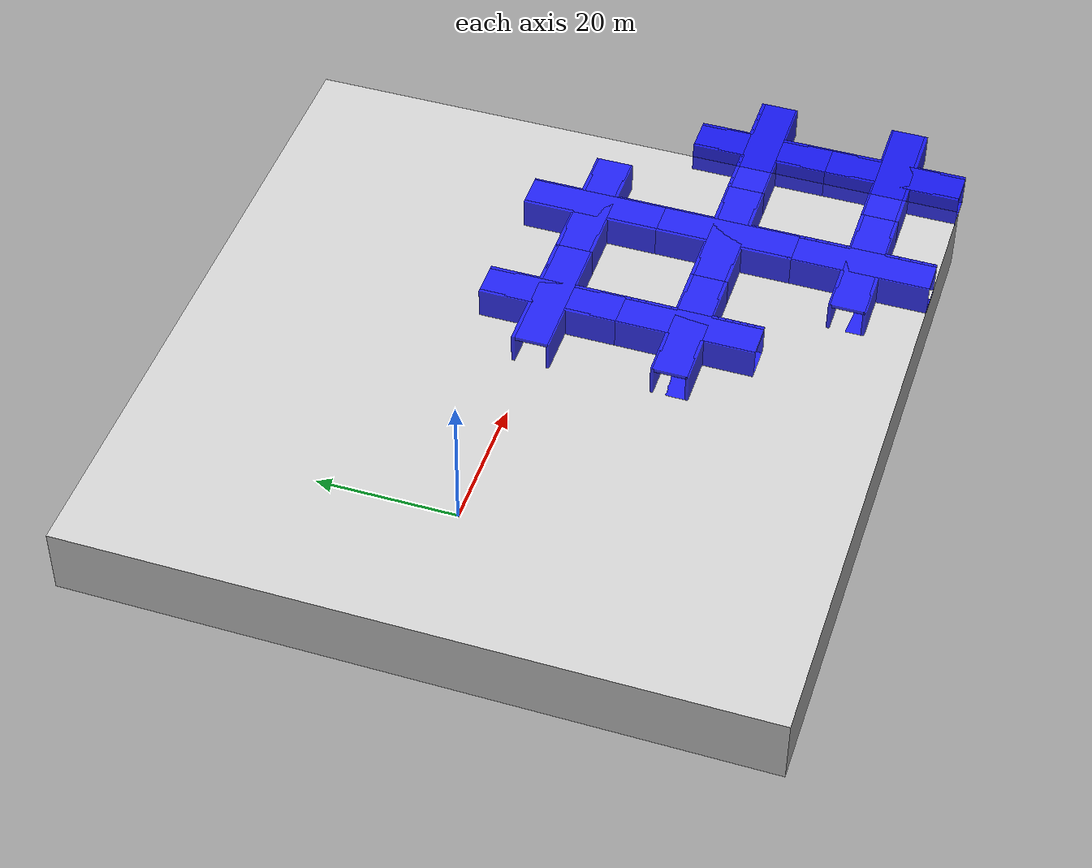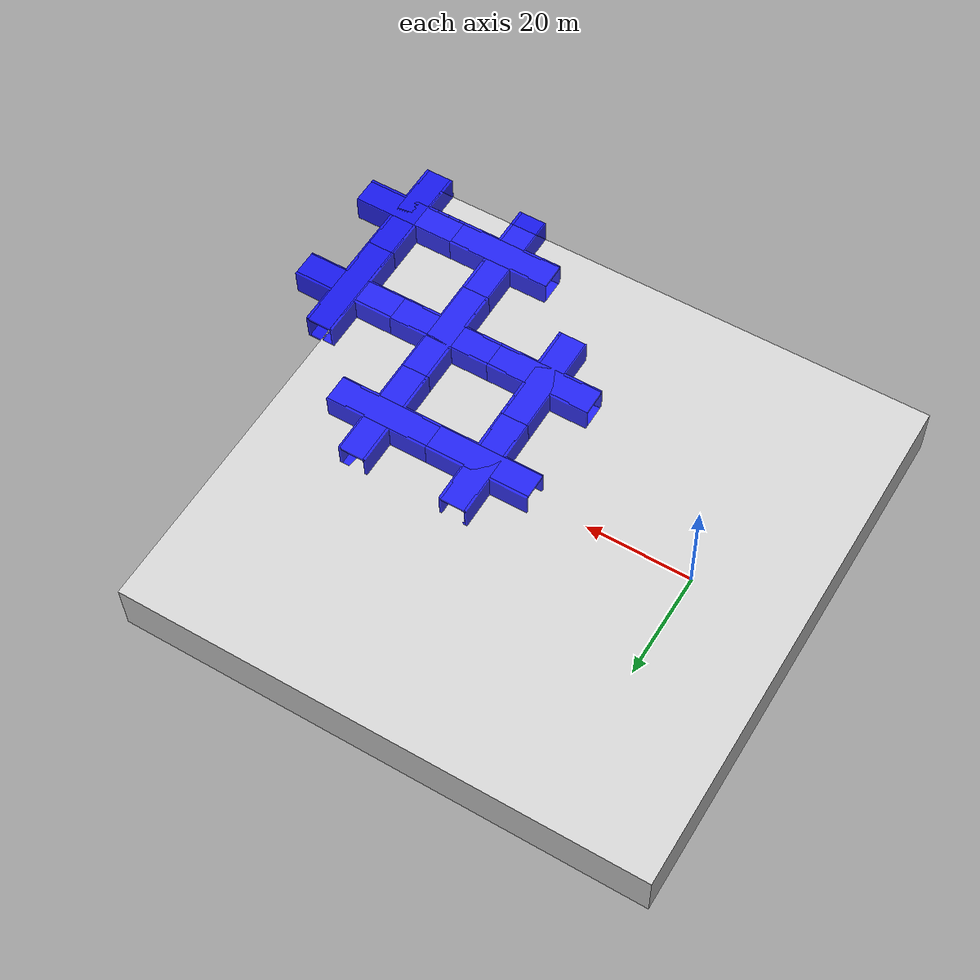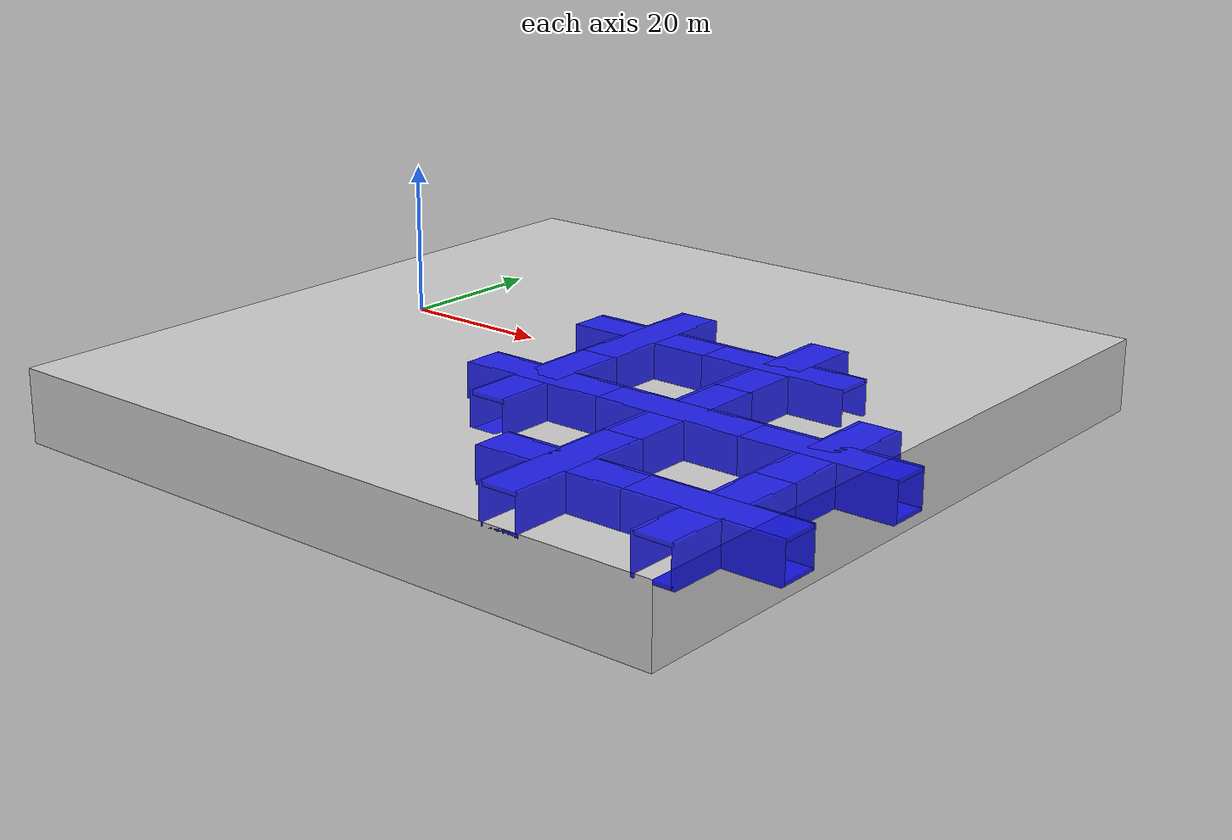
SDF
<sdf version="1.6">
 <world name="default">
  <model name="ground_plane">
   <static>true</static>
   <pose>30 0 0 0 0 0</pose>
   <link name="link">
    <collision name="collision">
     <pose>0 0 -5 0 0 0</pose>
     <geometry><box><size>100 100 10</size></box></geometry>
    </collision>
    <visual name="visual">
     <pose>0 0 -5 0 0 0</pose>
     <geometry><box><size>100 100 10</size></box></geometry>
     <material>
      <ambient>0.8 0.8 0.8 1</ambient>
      <diffuse>0.8 0.8 0.8 1</diffuse>
      <specular>0.8 0.8 0.8 1</specular>
      <emissive>0.8 0.8 0.8 1</emissive>
     </material>
    </visual>
   </link>
  </model>
  <model name="tunnel_tile_1_tile_6">
   <pose>40 -20 0 0 0 0</pose>
   <static>true</static>
   <link name="link">
    <collision name="collision_0">
     <pose>0 0 -0.25 0 0 0</pose>
     <geometry><box><size>5 20 0.5</size></box></geometry>
    </collision>
    <visual name="visual_0">
     <pose>0 0 -0.25 0 0 0</pose>
     <geometry><box><size>5 20 0.5</size></box></geometry>
     <material><ambient>0 0 1 0.8</ambient><diffuse>0 0 1 0.8</diffuse><specular>1 1 1 0.8</specular></material>
    </visual>
    <collision name="collision_1">
     <pose>0 0 4.25 0 0 0</pose>
     <geometry><box><size>5 20 0.5</size></box></geometry>
    </collision>
    <visual name="visual_1">
     <pose>0 0 4.25 0 0 0</pose>
     <geometry><box><size>5 20 0.5</size></box></geometry>
     <material><ambient>0 0 1 0.8</ambient><diffuse>0 0 1 0.8</diffuse><specular>1 1 1 0.8</specular></material>
    </visual>
    <collision name="collision_2">
     <pose>0 0 -0.25 0 0 1.57</pose>
     <geometry><box><size>5 20 0.5</size></box></geometry>
    </collision>
    <visual name="visual_2">
     <pose>0 0 -0.25 0 0 1.57</pose>
     <geometry><box><size>5 20 0.5</size></box></geometry>
     <material><ambient>0 0 1 0.8</ambient><diffuse>0 0 1 0.8</diffuse><specular>1 1 1 0.8</specular></material>
    </visual>
    <collision name="collision_3">
     <pose>0 0 4.25 0 0 1.57</pose>
     <geometry><box><size>5 20 0.5</size></box></geometry>
    </collision>
    <visual name="visual_3">
     <pose>0 0 4.25 0 0 1.57</pose>
     <geometry><box><size>5 20 0.5</size></box></geometry>
     <material><ambient>0 0 1 0.8</ambient><diffuse>0 0 1 0.8</diffuse><specular>1 1 1 0.8</specular></material>
    </visual>
    <collision name="collision_4">
     <pose>-2.5 6.25 2 3.14 -1.57 0</pose>
     <geometry><box><size>5 7.5 0.5</size></box></geometry>
    </collision>
    <visual name="visual_4">
     <pose>-2.5 6.25 2 3.14 -1.57 0</pose>
     <geometry><box><size>5 7.5 0.5</size></box></geometry>
     <material><ambient>0 0 1 0.8</ambient><diffuse>0 0 1 0.8</diffuse><specular>1 1 1 0.8</specular></material>
    </visual>
    <collision name="collision_5">
     <pose>2.5 6.25 2 3.14 -1.57 0</pose>
     <geometry><box><size>5 7.5 0.5</size></box></geometry>
    </collision>
    <visual name="visual_5">
     <pose>2.5 6.25 2 3.14 -1.57 0</pose>
     <geometry><box><size>5 7.5 0.5</size></box></geometry>
     <material><ambient>0 0 1 0.8</ambient><diffuse>0 0 1 0.8</diffuse><specular>1 1 1 0.8</specular></material>
    </visual>
    <collision name="collision_6">
     <pose>-2.5 -6.25 2 3.14 -1.57 0</pose>
     <geometry><box><size>5 7.5 0.5</size></box></geometry>
    </collision>
    <visual name="visual_6">
     <pose>-2.5 -6.25 2 3.14 -1.57 0</pose>
     <geometry><box><size>5 7.5 0.5</size></box></geometry>
     <material><ambient>0 0 1 0.8</ambient><diffuse>0 0 1 0.8</diffuse><specular>1 1 1 0.8</specular></material>
    </visual>
    <collision name="collision_7">
     <pose>2.5 -6.25 2 3.14 -1.57 0</pose>
     <geometry><box><size>5 7.5 0.5</size></box></geometry>
    </collision>
    <visual name="visual_7">
     <pose>2.5 -6.25 2 3.14 -1.57 0</pose>
     <geometry><box><size>5 7.5 0.5</size></box></geometry>
     <material><ambient>0 0 1 0.8</ambient><diffuse>0 0 1 0.8</diffuse><specular>1 1 1 0.8</specular></material>
    </visual>
    <collision name="collision_8">
     <pose>6.25 2.5 2 1.57 1.57 0</pose>
     <geometry><box><size>5 7.5 0.5</size></box></geometry>
    </collision>
    <visual name="visual_8">
     <pose>6.25 2.5 2 1.57 1.57 0</pose>
     <geometry><box><size>5 7.5 0.5</size></box></geometry>
     <material><ambient>0 0 1 0.8</ambient><diffuse>0 0 1 0.8</diffuse><specular>1 1 1 0.8</specular></material>
    </visual>
    <collision name="collision_9">
     <pose>-6.25 2.5 2 1.57 1.57 0</pose>
     <geometry><box><size>5 7.5 0.5</size></box></geometry>
    </collision>
    <visual name="visual_9">
     <pose>-6.25 2.5 2 1.57 1.57 0</pose>
     <geometry><box><size>5 7.5 0.5</size></box></geometry>
     <material><ambient>0 0 1 0.8</ambient><diffuse>0 0 1 0.8</diffuse><specular>1 1 1 0.8</specular></material>
    </visual>
    <collision name="collision_10">
     <pose>6.25 -2.5 2 1.57 1.57 0</pose>
     <geometry><box><size>5 7.5 0.5</size></box></geometry>
    </collision>
    <visual name="visual_10">
     <pose>6.25 -2.5 2 1.57 1.57 0</pose>
     <geometry><box><size>5 7.5 0.5</size></box></geometry>
     <material><ambient>0 0 1 0.8</ambient><diffuse>0 0 1 0.8</diffuse><specular>1 1 1 0.8</specular></material>
    </visual>
    <collision name="collision_11">
     <pose>-6.25 -2.5 2 1.57 1.57 0</pose>
     <geometry><box><size>5 7.5 0.5</size></box></geometry>
    </collision>
    <visual name="visual_11">
     <pose>-6.25 -2.5 2 1.57 1.57 0</pose>
     <geometry><box><size>5 7.5 0.5</size></box></geometry>
     <material><ambient>0 0 1 0.8</ambient><diffuse>0 0 1 0.8</diffuse><specular>1 1 1 0.8</specular></material>
    </visual>
   </link>
  </model>
  <model name="tunnel_tile_1_tile_7">
   <pose>40 0 0 0 0 1.5707963267948966</pose>
   <static>true</static>
   <link name="link">
    <collision name="collision_0">
     <pose>0 0 -0.25 0 0 0</pose>
     <geometry><box><size>5 20 0.5</size></box></geometry>
    </collision>
    <visual name="visual_0">
     <pose>0 0 -0.25 0 0 0</pose>
     <geometry><box><size>5 20 0.5</size></box></geometry>
     <material><ambient>0 0 1 0.8</ambient><diffuse>0 0 1 0.8</diffuse><specular>1 1 1 0.8</specular></material>
    </visual>
    <collision name="collision_1">
     <pose>0 0 4.25 0 0 0</pose>
     <geometry><box><size>5 20 0.5</size></box></geometry>
    </collision>
    <visual name="visual_1">
     <pose>0 0 4.25 0 0 0</pose>
     <geometry><box><size>5 20 0.5</size></box></geometry>
     <material><ambient>0 0 1 0.8</ambient><diffuse>0 0 1 0.8</diffuse><specular>1 1 1 0.8</specular></material>
    </visual>
    <collision name="collision_2">
     <pose>0 0 -0.25 0 0 1.57</pose>
     <geometry><box><size>5 20 0.5</size></box></geometry>
    </collision>
    <visual name="visual_2">
     <pose>0 0 -0.25 0 0 1.57</pose>
     <geometry><box><size>5 20 0.5</size></box></geometry>
     <material><ambient>0 0 1 0.8</ambient><diffuse>0 0 1 0.8</diffuse><specular>1 1 1 0.8</specular></material>
    </visual>
    <collision name="collision_3">
     <pose>0 0 4.25 0 0 1.57</pose>
     <geometry><box><size>5 20 0.5</size></box></geometry>
    </collision>
    <visual name="visual_3">
     <pose>0 0 4.25 0 0 1.57</pose>
     <geometry><box><size>5 20 0.5</size></box></geometry>
     <material><ambient>0 0 1 0.8</ambient><diffuse>0 0 1 0.8</diffuse><specular>1 1 1 0.8</specular></material>
    </visual>
    <collision name="collision_4">
     <pose>-2.5 6.25 2 3.14 -1.57 0</pose>
     <geometry><box><size>5 7.5 0.5</size></box></geometry>
    </collision>
    <visual name="visual_4">
     <pose>-2.5 6.25 2 3.14 -1.57 0</pose>
     <geometry><box><size>5 7.5 0.5</size></box></geometry>
     <material><ambient>0 0 1 0.8</ambient><diffuse>0 0 1 0.8</diffuse><specular>1 1 1 0.8</specular></material>
    </visual>
    <collision name="collision_5">
     <pose>2.5 6.25 2 3.14 -1.57 0</pose>
     <geometry><box><size>5 7.5 0.5</size></box></geometry>
    </collision>
    <visual name="visual_5">
     <pose>2.5 6.25 2 3.14 -1.57 0</pose>
     <geometry><box><size>5 7.5 0.5</size></box></geometry>
     <material><ambient>0 0 1 0.8</ambient><diffuse>0 0 1 0.8</diffuse><specular>1 1 1 0.8</specular></material>
    </visual>
    <collision name="collision_6">
     <pose>-2.5 -6.25 2 3.14 -1.57 0</pose>
     <geometry><box><size>5 7.5 0.5</size></box></geometry>
    </collision>
    <visual name="visual_6">
     <pose>-2.5 -6.25 2 3.14 -1.57 0</pose>
     <geometry><box><size>5 7.5 0.5</size></box></geometry>
     <material><ambient>0 0 1 0.8</ambient><diffuse>0 0 1 0.8</diffuse><specular>1 1 1 0.8</specular></material>
    </visual>
    <collision name="collision_7">
     <pose>2.5 -6.25 2 3.14 -1.57 0</pose>
     <geometry><box><size>5 7.5 0.5</size></box></geometry>
    </collision>
    <visual name="visual_7">
     <pose>2.5 -6.25 2 3.14 -1.57 0</pose>
     <geometry><box><size>5 7.5 0.5</size></box></geometry>
     <material><ambient>0 0 1 0.8</ambient><diffuse>0 0 1 0.8</diffuse><specular>1 1 1 0.8</specular></material>
    </visual>
    <collision name="collision_8">
     <pose>6.25 2.5 2 1.57 1.57 0</pose>
     <geometry><box><size>5 7.5 0.5</size></box></geometry>
    </collision>
    <visual name="visual_8">
     <pose>6.25 2.5 2 1.57 1.57 0</pose>
     <geometry><box><size>5 7.5 0.5</size></box></geometry>
     <material><ambient>0 0 1 0.8</ambient><diffuse>0 0 1 0.8</diffuse><specular>1 1 1 0.8</specular></material>
    </visual>
    <collision name="collision_9">
     <pose>-6.25 2.5 2 1.57 1.57 0</pose>
     <geometry><box><size>5 7.5 0.5</size></box></geometry>
    </collision>
    <visual name="visual_9">
     <pose>-6.25 2.5 2 1.57 1.57 0</pose>
     <geometry><box><size>5 7.5 0.5</size></box></geometry>
     <material><ambient>0 0 1 0.8</ambient><diffuse>0 0 1 0.8</diffuse><specular>1 1 1 0.8</specular></material>
    </visual>
    <collision name="collision_10">
     <pose>6.25 -2.5 2 1.57 1.57 0</pose>
     <geometry><box><size>5 7.5 0.5</size></box></geometry>
    </collision>
    <visual name="visual_10">
     <pose>6.25 -2.5 2 1.57 1.57 0</pose>
     <geometry><box><size>5 7.5 0.5</size></box></geometry>
     <material><ambient>0 0 1 0.8</ambient><diffuse>0 0 1 0.8</diffuse><specular>1 1 1 0.8</specular></material>
    </visual>
    <collision name="collision_11">
     <pose>-6.25 -2.5 2 1.57 1.57 0</pose>
     <geometry><box><size>5 7.5 0.5</size></box></geometry>
    </collision>
    <visual name="visual_11">
     <pose>-6.25 -2.5 2 1.57 1.57 0</pose>
     <geometry><box><size>5 7.5 0.5</size></box></geometry>
     <material><ambient>0 0 1 0.8</ambient><diffuse>0 0 1 0.8</diffuse><specular>1 1 1 0.8</specular></material>
    </visual>
   </link>
  </model>
  <model name="tunnel_tile_1_tile_10">
   <pose>60 -40 0 0 0 0</pose>
   <static>true</static>
   <link name="link">
    <collision name="collision_0">
     <pose>0 0 -0.25 0 0 0</pose>
     <geometry><box><size>5 20 0.5</size></box></geometry>
    </collision>
    <visual name="visual_0">
     <pose>0 0 -0.25 0 0 0</pose>
     <geometry><box><size>5 20 0.5</size></box></geometry>
     <material><ambient>0 0 1 0.8</ambient><diffuse>0 0 1 0.8</diffuse><specular>1 1 1 0.8</specular></material>
    </visual>
    <collision name="collision_1">
     <pose>0 0 4.25 0 0 0</pose>
     <geometry><box><size>5 20 0.5</size></box></geometry>
    </collision>
    <visual name="visual_1">
     <pose>0 0 4.25 0 0 0</pose>
     <geometry><box><size>5 20 0.5</size></box></geometry>
     <material><ambient>0 0 1 0.8</ambient><diffuse>0 0 1 0.8</diffuse><specular>1 1 1 0.8</specular></material>
    </visual>
    <collision name="collision_2">
     <pose>0 0 -0.25 0 0 1.57</pose>
     <geometry><box><size>5 20 0.5</size></box></geometry>
    </collision>
    <visual name="visual_2">
     <pose>0 0 -0.25 0 0 1.57</pose>
     <geometry><box><size>5 20 0.5</size></box></geometry>
     <material><ambient>0 0 1 0.8</ambient><diffuse>0 0 1 0.8</diffuse><specular>1 1 1 0.8</specular></material>
    </visual>
    <collision name="collision_3">
     <pose>0 0 4.25 0 0 1.57</pose>
     <geometry><box><size>5 20 0.5</size></box></geometry>
    </collision>
    <visual name="visual_3">
     <pose>0 0 4.25 0 0 1.57</pose>
     <geometry><box><size>5 20 0.5</size></box></geometry>
     <material><ambient>0 0 1 0.8</ambient><diffuse>0 0 1 0.8</diffuse><specular>1 1 1 0.8</specular></material>
    </visual>
    <collision name="collision_4">
     <pose>-2.5 6.25 2 3.14 -1.57 0</pose>
     <geometry><box><size>5 7.5 0.5</size></box></geometry>
    </collision>
    <visual name="visual_4">
     <pose>-2.5 6.25 2 3.14 -1.57 0</pose>
     <geometry><box><size>5 7.5 0.5</size></box></geometry>
     <material><ambient>0 0 1 0.8</ambient><diffuse>0 0 1 0.8</diffuse><specular>1 1 1 0.8</specular></material>
    </visual>
    <collision name="collision_5">
     <pose>2.5 6.25 2 3.14 -1.57 0</pose>
     <geometry><box><size>5 7.5 0.5</size></box></geometry>
    </collision>
    <visual name="visual_5">
     <pose>2.5 6.25 2 3.14 -1.57 0</pose>
     <geometry><box><size>5 7.5 0.5</size></box></geometry>
     <material><ambient>0 0 1 0.8</ambient><diffuse>0 0 1 0.8</diffuse><specular>1 1 1 0.8</specular></material>
    </visual>
    <collision name="collision_6">
     <pose>-2.5 -6.25 2 3.14 -1.57 0</pose>
     <geometry><box><size>5 7.5 0.5</size></box></geometry>
    </collision>
    <visual name="visual_6">
     <pose>-2.5 -6.25 2 3.14 -1.57 0</pose>
     <geometry><box><size>5 7.5 0.5</size></box></geometry>
     <material><ambient>0 0 1 0.8</ambient><diffuse>0 0 1 0.8</diffuse><specular>1 1 1 0.8</specular></material>
    </visual>
    <collision name="collision_7">
     <pose>2.5 -6.25 2 3.14 -1.57 0</pose>
     <geometry><box><size>5 7.5 0.5</size></box></geometry>
    </collision>
    <visual name="visual_7">
     <pose>2.5 -6.25 2 3.14 -1.57 0</pose>
     <geometry><box><size>5 7.5 0.5</size></box></geometry>
     <material><ambient>0 0 1 0.8</ambient><diffuse>0 0 1 0.8</diffuse><specular>1 1 1 0.8</specular></material>
    </visual>
    <collision name="collision_8">
     <pose>6.25 2.5 2 1.57 1.57 0</pose>
     <geometry><box><size>5 7.5 0.5</size></box></geometry>
    </collision>
    <visual name="visual_8">
     <pose>6.25 2.5 2 1.57 1.57 0</pose>
     <geometry><box><size>5 7.5 0.5</size></box></geometry>
     <material><ambient>0 0 1 0.8</ambient><diffuse>0 0 1 0.8</diffuse><specular>1 1 1 0.8</specular></material>
    </visual>
    <collision name="collision_9">
     <pose>-6.25 2.5 2 1.57 1.57 0</pose>
     <geometry><box><size>5 7.5 0.5</size></box></geometry>
    </collision>
    <visual name="visual_9">
     <pose>-6.25 2.5 2 1.57 1.57 0</pose>
     <geometry><box><size>5 7.5 0.5</size></box></geometry>
     <material><ambient>0 0 1 0.8</ambient><diffuse>0 0 1 0.8</diffuse><specular>1 1 1 0.8</specular></material>
    </visual>
    <collision name="collision_10">
     <pose>6.25 -2.5 2 1.57 1.57 0</pose>
     <geometry><box><size>5 7.5 0.5</size></box></geometry>
    </collision>
    <visual name="visual_10">
     <pose>6.25 -2.5 2 1.57 1.57 0</pose>
     <geometry><box><size>5 7.5 0.5</size></box></geometry>
     <material><ambient>0 0 1 0.8</ambient><diffuse>0 0 1 0.8</diffuse><specular>1 1 1 0.8</specular></material>
    </visual>
    <collision name="collision_11">
     <pose>-6.25 -2.5 2 1.57 1.57 0</pose>
     <geometry><box><size>5 7.5 0.5</size></box></geometry>
    </collision>
    <visual name="visual_11">
     <pose>-6.25 -2.5 2 1.57 1.57 0</pose>
     <geometry><box><size>5 7.5 0.5</size></box></geometry>
     <material><ambient>0 0 1 0.8</ambient><diffuse>0 0 1 0.8</diffuse><specular>1 1 1 0.8</specular></material>
    </visual>
   </link>
  </model>
  <model name="tunnel_tile_1_tile_11">
   <pose>60 -20 0 0 0 3.141592653589793</pose>
   <static>true</static>
   <link name="link">
    <collision name="collision_0">
     <pose>0 0 -0.25 0 0 0</pose>
     <geometry><box><size>5 20 0.5</size></box></geometry>
    </collision>
    <visual name="visual_0">
     <pose>0 0 -0.25 0 0 0</pose>
     <geometry><box><size>5 20 0.5</size></box></geometry>
     <material><ambient>0 0 1 0.8</ambient><diffuse>0 0 1 0.8</diffuse><specular>1 1 1 0.8</specular></material>
    </visual>
    <collision name="collision_1">
     <pose>0 0 4.25 0 0 0</pose>
     <geometry><box><size>5 20 0.5</size></box></geometry>
    </collision>
    <visual name="visual_1">
     <pose>0 0 4.25 0 0 0</pose>
     <geometry><box><size>5 20 0.5</size></box></geometry>
     <material><ambient>0 0 1 0.8</ambient><diffuse>0 0 1 0.8</diffuse><specular>1 1 1 0.8</specular></material>
    </visual>
    <collision name="collision_2">
     <pose>0 0 -0.25 0 0 1.57</pose>
     <geometry><box><size>5 20 0.5</size></box></geometry>
    </collision>
    <visual name="visual_2">
     <pose>0 0 -0.25 0 0 1.57</pose>
     <geometry><box><size>5 20 0.5</size></box></geometry>
     <material><ambient>0 0 1 0.8</ambient><diffuse>0 0 1 0.8</diffuse><specular>1 1 1 0.8</specular></material>
    </visual>
    <collision name="collision_3">
     <pose>0 0 4.25 0 0 1.57</pose>
     <geometry><box><size>5 20 0.5</size></box></geometry>
    </collision>
    <visual name="visual_3">
     <pose>0 0 4.25 0 0 1.57</pose>
     <geometry><box><size>5 20 0.5</size></box></geometry>
     <material><ambient>0 0 1 0.8</ambient><diffuse>0 0 1 0.8</diffuse><specular>1 1 1 0.8</specular></material>
    </visual>
    <collision name="collision_4">
     <pose>-2.5 6.25 2 3.14 -1.57 0</pose>
     <geometry><box><size>5 7.5 0.5</size></box></geometry>
    </collision>
    <visual name="visual_4">
     <pose>-2.5 6.25 2 3.14 -1.57 0</pose>
     <geometry><box><size>5 7.5 0.5</size></box></geometry>
     <material><ambient>0 0 1 0.8</ambient><diffuse>0 0 1 0.8</diffuse><specular>1 1 1 0.8</specular></material>
    </visual>
    <collision name="collision_5">
     <pose>2.5 6.25 2 3.14 -1.57 0</pose>
     <geometry><box><size>5 7.5 0.5</size></box></geometry>
    </collision>
    <visual name="visual_5">
     <pose>2.5 6.25 2 3.14 -1.57 0</pose>
     <geometry><box><size>5 7.5 0.5</size></box></geometry>
     <material><ambient>0 0 1 0.8</ambient><diffuse>0 0 1 0.8</diffuse><specular>1 1 1 0.8</specular></material>
    </visual>
    <collision name="collision_6">
     <pose>-2.5 -6.25 2 3.14 -1.57 0</pose>
     <geometry><box><size>5 7.5 0.5</size></box></geometry>
    </collision>
    <visual name="visual_6">
     <pose>-2.5 -6.25 2 3.14 -1.57 0</pose>
     <geometry><box><size>5 7.5 0.5</size></box></geometry>
     <material><ambient>0 0 1 0.8</ambient><diffuse>0 0 1 0.8</diffuse><specular>1 1 1 0.8</specular></material>
    </visual>
    <collision name="collision_7">
     <pose>2.5 -6.25 2 3.14 -1.57 0</pose>
     <geometry><box><size>5 7.5 0.5</size></box></geometry>
    </collision>
    <visual name="visual_7">
     <pose>2.5 -6.25 2 3.14 -1.57 0</pose>
     <geometry><box><size>5 7.5 0.5</size></box></geometry>
     <material><ambient>0 0 1 0.8</ambient><diffuse>0 0 1 0.8</diffuse><specular>1 1 1 0.8</specular></material>
    </visual>
    <collision name="collision_8">
     <pose>6.25 2.5 2 1.57 1.57 0</pose>
     <geometry><box><size>5 7.5 0.5</size></box></geometry>
    </collision>
    <visual name="visual_8">
     <pose>6.25 2.5 2 1.57 1.57 0</pose>
     <geometry><box><size>5 7.5 0.5</size></box></geometry>
     <material><ambient>0 0 1 0.8</ambient><diffuse>0 0 1 0.8</diffuse><specular>1 1 1 0.8</specular></material>
    </visual>
    <collision name="collision_9">
     <pose>-6.25 2.5 2 1.57 1.57 0</pose>
     <geometry><box><size>5 7.5 0.5</size></box></geometry>
    </collision>
    <visual name="visual_9">
     <pose>-6.25 2.5 2 1.57 1.57 0</pose>
     <geometry><box><size>5 7.5 0.5</size></box></geometry>
     <material><ambient>0 0 1 0.8</ambient><diffuse>0 0 1 0.8</diffuse><specular>1 1 1 0.8</specular></material>
    </visual>
    <collision name="collision_10">
     <pose>6.25 -2.5 2 1.57 1.57 0</pose>
     <geometry><box><size>5 7.5 0.5</size></box></geometry>
    </collision>
    <visual name="visual_10">
     <pose>6.25 -2.5 2 1.57 1.57 0</pose>
     <geometry><box><size>5 7.5 0.5</size></box></geometry>
     <material><ambient>0 0 1 0.8</ambient><diffuse>0 0 1 0.8</diffuse><specular>1 1 1 0.8</specular></material>
    </visual>
    <collision name="collision_11">
     <pose>-6.25 -2.5 2 1.57 1.57 0</pose>
     <geometry><box><size>5 7.5 0.5</size></box></geometry>
    </collision>
    <visual name="visual_11">
     <pose>-6.25 -2.5 2 1.57 1.57 0</pose>
     <geometry><box><size>5 7.5 0.5</size></box></geometry>
     <material><ambient>0 0 1 0.8</ambient><diffuse>0 0 1 0.8</diffuse><specular>1 1 1 0.8</specular></material>
    </visual>
   </link>
  </model>
  <model name="tunnel_tile_1_tile_12">
   <pose>60 0 0 0 0 3.141592653589793</pose>
   <static>true</static>
   <link name="link">
    <collision name="collision_0">
     <pose>0 0 -0.25 0 0 0</pose>
     <geometry><box><size>5 20 0.5</size></box></geometry>
    </collision>
    <visual name="visual_0">
     <pose>0 0 -0.25 0 0 0</pose>
     <geometry><box><size>5 20 0.5</size></box></geometry>
     <material><ambient>0 0 1 0.8</ambient><diffuse>0 0 1 0.8</diffuse><specular>1 1 1 0.8</specular></material>
    </visual>
    <collision name="collision_1">
     <pose>0 0 4.25 0 0 0</pose>
     <geometry><box><size>5 20 0.5</size></box></geometry>
    </collision>
    <visual name="visual_1">
     <pose>0 0 4.25 0 0 0</pose>
     <geometry><box><size>5 20 0.5</size></box></geometry>
     <material><ambient>0 0 1 0.8</ambient><diffuse>0 0 1 0.8</diffuse><specular>1 1 1 0.8</specular></material>
    </visual>
    <collision name="collision_2">
     <pose>0 0 -0.25 0 0 1.57</pose>
     <geometry><box><size>5 20 0.5</size></box></geometry>
    </collision>
    <visual name="visual_2">
     <pose>0 0 -0.25 0 0 1.57</pose>
     <geometry><box><size>5 20 0.5</size></box></geometry>
     <material><ambient>0 0 1 0.8</ambient><diffuse>0 0 1 0.8</diffuse><specular>1 1 1 0.8</specular></material>
    </visual>
    <collision name="collision_3">
     <pose>0 0 4.25 0 0 1.57</pose>
     <geometry><box><size>5 20 0.5</size></box></geometry>
    </collision>
    <visual name="visual_3">
     <pose>0 0 4.25 0 0 1.57</pose>
     <geometry><box><size>5 20 0.5</size></box></geometry>
     <material><ambient>0 0 1 0.8</ambient><diffuse>0 0 1 0.8</diffuse><specular>1 1 1 0.8</specular></material>
    </visual>
    <collision name="collision_4">
     <pose>-2.5 6.25 2 3.14 -1.57 0</pose>
     <geometry><box><size>5 7.5 0.5</size></box></geometry>
    </collision>
    <visual name="visual_4">
     <pose>-2.5 6.25 2 3.14 -1.57 0</pose>
     <geometry><box><size>5 7.5 0.5</size></box></geometry>
     <material><ambient>0 0 1 0.8</ambient><diffuse>0 0 1 0.8</diffuse><specular>1 1 1 0.8</specular></material>
    </visual>
    <collision name="collision_5">
     <pose>2.5 6.25 2 3.14 -1.57 0</pose>
     <geometry><box><size>5 7.5 0.5</size></box></geometry>
    </collision>
    <visual name="visual_5">
     <pose>2.5 6.25 2 3.14 -1.57 0</pose>
     <geometry><box><size>5 7.5 0.5</size></box></geometry>
     <material><ambient>0 0 1 0.8</ambient><diffuse>0 0 1 0.8</diffuse><specular>1 1 1 0.8</specular></material>
    </visual>
    <collision name="collision_6">
     <pose>-2.5 -6.25 2 3.14 -1.57 0</pose>
     <geometry><box><size>5 7.5 0.5</size></box></geometry>
    </collision>
    <visual name="visual_6">
     <pose>-2.5 -6.25 2 3.14 -1.57 0</pose>
     <geometry><box><size>5 7.5 0.5</size></box></geometry>
     <material><ambient>0 0 1 0.8</ambient><diffuse>0 0 1 0.8</diffuse><specular>1 1 1 0.8</specular></material>
    </visual>
    <collision name="collision_7">
     <pose>2.5 -6.25 2 3.14 -1.57 0</pose>
     <geometry><box><size>5 7.5 0.5</size></box></geometry>
    </collision>
    <visual name="visual_7">
     <pose>2.5 -6.25 2 3.14 -1.57 0</pose>
     <geometry><box><size>5 7.5 0.5</size></box></geometry>
     <material><ambient>0 0 1 0.8</ambient><diffuse>0 0 1 0.8</diffuse><specular>1 1 1 0.8</specular></material>
    </visual>
    <collision name="collision_8">
     <pose>6.25 2.5 2 1.57 1.57 0</pose>
     <geometry><box><size>5 7.5 0.5</size></box></geometry>
    </collision>
    <visual name="visual_8">
     <pose>6.25 2.5 2 1.57 1.57 0</pose>
     <geometry><box><size>5 7.5 0.5</size></box></geometry>
     <material><ambient>0 0 1 0.8</ambient><diffuse>0 0 1 0.8</diffuse><specular>1 1 1 0.8</specular></material>
    </visual>
    <collision name="collision_9">
     <pose>-6.25 2.5 2 1.57 1.57 0</pose>
     <geometry><box><size>5 7.5 0.5</size></box></geometry>
    </collision>
    <visual name="visual_9">
     <pose>-6.25 2.5 2 1.57 1.57 0</pose>
     <geometry><box><size>5 7.5 0.5</size></box></geometry>
     <material><ambient>0 0 1 0.8</ambient><diffuse>0 0 1 0.8</diffuse><specular>1 1 1 0.8</specular></material>
    </visual>
    <collision name="collision_10">
     <pose>6.25 -2.5 2 1.57 1.57 0</pose>
     <geometry><box><size>5 7.5 0.5</size></box></geometry>
    </collision>
    <visual name="visual_10">
     <pose>6.25 -2.5 2 1.57 1.57 0</pose>
     <geometry><box><size>5 7.5 0.5</size></box></geometry>
     <material><ambient>0 0 1 0.8</ambient><diffuse>0 0 1 0.8</diffuse><specular>1 1 1 0.8</specular></material>
    </visual>
    <collision name="collision_11">
     <pose>-6.25 -2.5 2 1.57 1.57 0</pose>
     <geometry><box><size>5 7.5 0.5</size></box></geometry>
    </collision>
    <visual name="visual_11">
     <pose>-6.25 -2.5 2 1.57 1.57 0</pose>
     <geometry><box><size>5 7.5 0.5</size></box></geometry>
     <material><ambient>0 0 1 0.8</ambient><diffuse>0 0 1 0.8</diffuse><specular>1 1 1 0.8</specular></material>
    </visual>
   </link>
  </model>
  <model name="tunnel_tile_1_tile_15">
   <pose>80 -40 0 0 0 -1.5707963267948966</pose>
   <static>true</static>
   <link name="link">
    <collision name="collision_0">
     <pose>0 0 -0.25 0 0 0</pose>
     <geometry><box><size>5 20 0.5</size></box></geometry>
    </collision>
    <visual name="visual_0">
     <pose>0 0 -0.25 0 0 0</pose>
     <geometry><box><size>5 20 0.5</size></box></geometry>
     <material><ambient>0 0 1 0.8</ambient><diffuse>0 0 1 0.8</diffuse><specular>1 1 1 0.8</specular></material>
    </visual>
    <collision name="collision_1">
     <pose>0 0 4.25 0 0 0</pose>
     <geometry><box><size>5 20 0.5</size></box></geometry>
    </collision>
    <visual name="visual_1">
     <pose>0 0 4.25 0 0 0</pose>
     <geometry><box><size>5 20 0.5</size></box></geometry>
     <material><ambient>0 0 1 0.8</ambient><diffuse>0 0 1 0.8</diffuse><specular>1 1 1 0.8</specular></material>
    </visual>
    <collision name="collision_2">
     <pose>0 0 -0.25 0 0 1.57</pose>
     <geometry><box><size>5 20 0.5</size></box></geometry>
    </collision>
    <visual name="visual_2">
     <pose>0 0 -0.25 0 0 1.57</pose>
     <geometry><box><size>5 20 0.5</size></box></geometry>
     <material><ambient>0 0 1 0.8</ambient><diffuse>0 0 1 0.8</diffuse><specular>1 1 1 0.8</specular></material>
    </visual>
    <collision name="collision_3">
     <pose>0 0 4.25 0 0 1.57</pose>
     <geometry><box><size>5 20 0.5</size></box></geometry>
    </collision>
    <visual name="visual_3">
     <pose>0 0 4.25 0 0 1.57</pose>
     <geometry><box><size>5 20 0.5</size></box></geometry>
     <material><ambient>0 0 1 0.8</ambient><diffuse>0 0 1 0.8</diffuse><specular>1 1 1 0.8</specular></material>
    </visual>
    <collision name="collision_4">
     <pose>-2.5 6.25 2 3.14 -1.57 0</pose>
     <geometry><box><size>5 7.5 0.5</size></box></geometry>
    </collision>
    <visual name="visual_4">
     <pose>-2.5 6.25 2 3.14 -1.57 0</pose>
     <geometry><box><size>5 7.5 0.5</size></box></geometry>
     <material><ambient>0 0 1 0.8</ambient><diffuse>0 0 1 0.8</diffuse><specular>1 1 1 0.8</specular></material>
    </visual>
    <collision name="collision_5">
     <pose>2.5 6.25 2 3.14 -1.57 0</pose>
     <geometry><box><size>5 7.5 0.5</size></box></geometry>
    </collision>
    <visual name="visual_5">
     <pose>2.5 6.25 2 3.14 -1.57 0</pose>
     <geometry><box><size>5 7.5 0.5</size></box></geometry>
     <material><ambient>0 0 1 0.8</ambient><diffuse>0 0 1 0.8</diffuse><specular>1 1 1 0.8</specular></material>
    </visual>
    <collision name="collision_6">
     <pose>-2.5 -6.25 2 3.14 -1.57 0</pose>
     <geometry><box><size>5 7.5 0.5</size></box></geometry>
    </collision>
    <visual name="visual_6">
     <pose>-2.5 -6.25 2 3.14 -1.57 0</pose>
     <geometry><box><size>5 7.5 0.5</size></box></geometry>
     <material><ambient>0 0 1 0.8</ambient><diffuse>0 0 1 0.8</diffuse><specular>1 1 1 0.8</specular></material>
    </visual>
    <collision name="collision_7">
     <pose>2.5 -6.25 2 3.14 -1.57 0</pose>
     <geometry><box><size>5 7.5 0.5</size></box></geometry>
    </collision>
    <visual name="visual_7">
     <pose>2.5 -6.25 2 3.14 -1.57 0</pose>
     <geometry><box><size>5 7.5 0.5</size></box></geometry>
     <material><ambient>0 0 1 0.8</ambient><diffuse>0 0 1 0.8</diffuse><specular>1 1 1 0.8</specular></material>
    </visual>
    <collision name="collision_8">
     <pose>6.25 2.5 2 1.57 1.57 0</pose>
     <geometry><box><size>5 7.5 0.5</size></box></geometry>
    </collision>
    <visual name="visual_8">
     <pose>6.25 2.5 2 1.57 1.57 0</pose>
     <geometry><box><size>5 7.5 0.5</size></box></geometry>
     <material><ambient>0 0 1 0.8</ambient><diffuse>0 0 1 0.8</diffuse><specular>1 1 1 0.8</specular></material>
    </visual>
    <collision name="collision_9">
     <pose>-6.25 2.5 2 1.57 1.57 0</pose>
     <geometry><box><size>5 7.5 0.5</size></box></geometry>
    </collision>
    <visual name="visual_9">
     <pose>-6.25 2.5 2 1.57 1.57 0</pose>
     <geometry><box><size>5 7.5 0.5</size></box></geometry>
     <material><ambient>0 0 1 0.8</ambient><diffuse>0 0 1 0.8</diffuse><specular>1 1 1 0.8</specular></material>
    </visual>
    <collision name="collision_10">
     <pose>6.25 -2.5 2 1.57 1.57 0</pose>
     <geometry><box><size>5 7.5 0.5</size></box></geometry>
    </collision>
    <visual name="visual_10">
     <pose>6.25 -2.5 2 1.57 1.57 0</pose>
     <geometry><box><size>5 7.5 0.5</size></box></geometry>
     <material><ambient>0 0 1 0.8</ambient><diffuse>0 0 1 0.8</diffuse><specular>1 1 1 0.8</specular></material>
    </visual>
    <collision name="collision_11">
     <pose>-6.25 -2.5 2 1.57 1.57 0</pose>
     <geometry><box><size>5 7.5 0.5</size></box></geometry>
    </collision>
    <visual name="visual_11">
     <pose>-6.25 -2.5 2 1.57 1.57 0</pose>
     <geometry><box><size>5 7.5 0.5</size></box></geometry>
     <material><ambient>0 0 1 0.8</ambient><diffuse>0 0 1 0.8</diffuse><specular>1 1 1 0.8</specular></material>
    </visual>
   </link>
  </model>
  <model name="tunnel_tile_1_tile_16">
   <pose>80 -20 0 0 0 1.5707963267948966</pose>
   <static>true</static>
   <link name="link">
    <collision name="collision_0">
     <pose>0 0 -0.25 0 0 0</pose>
     <geometry><box><size>5 20 0.5</size></box></geometry>
    </collision>
    <visual name="visual_0">
     <pose>0 0 -0.25 0 0 0</pose>
     <geometry><box><size>5 20 0.5</size></box></geometry>
     <material><ambient>0 0 1 0.8</ambient><diffuse>0 0 1 0.8</diffuse><specular>1 1 1 0.8</specular></material>
    </visual>
    <collision name="collision_1">
     <pose>0 0 4.25 0 0 0</pose>
     <geometry><box><size>5 20 0.5</size></box></geometry>
    </collision>
    <visual name="visual_1">
     <pose>0 0 4.25 0 0 0</pose>
     <geometry><box><size>5 20 0.5</size></box></geometry>
     <material><ambient>0 0 1 0.8</ambient><diffuse>0 0 1 0.8</diffuse><specular>1 1 1 0.8</specular></material>
    </visual>
    <collision name="collision_2">
     <pose>0 0 -0.25 0 0 1.57</pose>
     <geometry><box><size>5 20 0.5</size></box></geometry>
    </collision>
    <visual name="visual_2">
     <pose>0 0 -0.25 0 0 1.57</pose>
     <geometry><box><size>5 20 0.5</size></box></geometry>
     <material><ambient>0 0 1 0.8</ambient><diffuse>0 0 1 0.8</diffuse><specular>1 1 1 0.8</specular></material>
    </visual>
    <collision name="collision_3">
     <pose>0 0 4.25 0 0 1.57</pose>
     <geometry><box><size>5 20 0.5</size></box></geometry>
    </collision>
    <visual name="visual_3">
     <pose>0 0 4.25 0 0 1.57</pose>
     <geometry><box><size>5 20 0.5</size></box></geometry>
     <material><ambient>0 0 1 0.8</ambient><diffuse>0 0 1 0.8</diffuse><specular>1 1 1 0.8</specular></material>
    </visual>
    <collision name="collision_4">
     <pose>-2.5 6.25 2 3.14 -1.57 0</pose>
     <geometry><box><size>5 7.5 0.5</size></box></geometry>
    </collision>
    <visual name="visual_4">
     <pose>-2.5 6.25 2 3.14 -1.57 0</pose>
     <geometry><box><size>5 7.5 0.5</size></box></geometry>
     <material><ambient>0 0 1 0.8</ambient><diffuse>0 0 1 0.8</diffuse><specular>1 1 1 0.8</specular></material>
    </visual>
    <collision name="collision_5">
     <pose>2.5 6.25 2 3.14 -1.57 0</pose>
     <geometry><box><size>5 7.5 0.5</size></box></geometry>
    </collision>
    <visual name="visual_5">
     <pose>2.5 6.25 2 3.14 -1.57 0</pose>
     <geometry><box><size>5 7.5 0.5</size></box></geometry>
     <material><ambient>0 0 1 0.8</ambient><diffuse>0 0 1 0.8</diffuse><specular>1 1 1 0.8</specular></material>
    </visual>
    <collision name="collision_6">
     <pose>-2.5 -6.25 2 3.14 -1.57 0</pose>
     <geometry><box><size>5 7.5 0.5</size></box></geometry>
    </collision>
    <visual name="visual_6">
     <pose>-2.5 -6.25 2 3.14 -1.57 0</pose>
     <geometry><box><size>5 7.5 0.5</size></box></geometry>
     <material><ambient>0 0 1 0.8</ambient><diffuse>0 0 1 0.8</diffuse><specular>1 1 1 0.8</specular></material>
    </visual>
    <collision name="collision_7">
     <pose>2.5 -6.25 2 3.14 -1.57 0</pose>
     <geometry><box><size>5 7.5 0.5</size></box></geometry>
    </collision>
    <visual name="visual_7">
     <pose>2.5 -6.25 2 3.14 -1.57 0</pose>
     <geometry><box><size>5 7.5 0.5</size></box></geometry>
     <material><ambient>0 0 1 0.8</ambient><diffuse>0 0 1 0.8</diffuse><specular>1 1 1 0.8</specular></material>
    </visual>
    <collision name="collision_8">
     <pose>6.25 2.5 2 1.57 1.57 0</pose>
     <geometry><box><size>5 7.5 0.5</size></box></geometry>
    </collision>
    <visual name="visual_8">
     <pose>6.25 2.5 2 1.57 1.57 0</pose>
     <geometry><box><size>5 7.5 0.5</size></box></geometry>
     <material><ambient>0 0 1 0.8</ambient><diffuse>0 0 1 0.8</diffuse><specular>1 1 1 0.8</specular></material>
    </visual>
    <collision name="collision_9">
     <pose>-6.25 2.5 2 1.57 1.57 0</pose>
     <geometry><box><size>5 7.5 0.5</size></box></geometry>
    </collision>
    <visual name="visual_9">
     <pose>-6.25 2.5 2 1.57 1.57 0</pose>
     <geometry><box><size>5 7.5 0.5</size></box></geometry>
     <material><ambient>0 0 1 0.8</ambient><diffuse>0 0 1 0.8</diffuse><specular>1 1 1 0.8</specular></material>
    </visual>
    <collision name="collision_10">
     <pose>6.25 -2.5 2 1.57 1.57 0</pose>
     <geometry><box><size>5 7.5 0.5</size></box></geometry>
    </collision>
    <visual name="visual_10">
     <pose>6.25 -2.5 2 1.57 1.57 0</pose>
     <geometry><box><size>5 7.5 0.5</size></box></geometry>
     <material><ambient>0 0 1 0.8</ambient><diffuse>0 0 1 0.8</diffuse><specular>1 1 1 0.8</specular></material>
    </visual>
    <collision name="collision_11">
     <pose>-6.25 -2.5 2 1.57 1.57 0</pose>
     <geometry><box><size>5 7.5 0.5</size></box></geometry>
    </collision>
    <visual name="visual_11">
     <pose>-6.25 -2.5 2 1.57 1.57 0</pose>
     <geometry><box><size>5 7.5 0.5</size></box></geometry>
     <material><ambient>0 0 1 0.8</ambient><diffuse>0 0 1 0.8</diffuse><specular>1 1 1 0.8</specular></material>
    </visual>
   </link>
  </model>
 </world>
</sdf>
